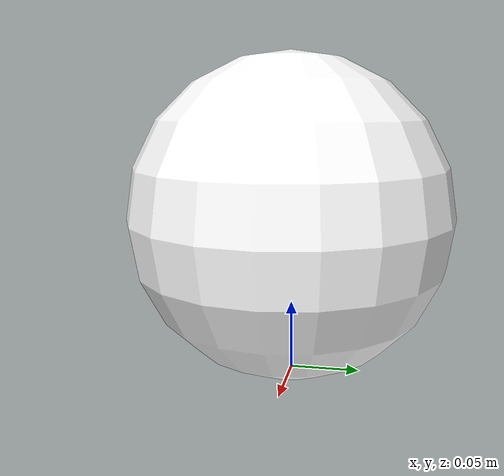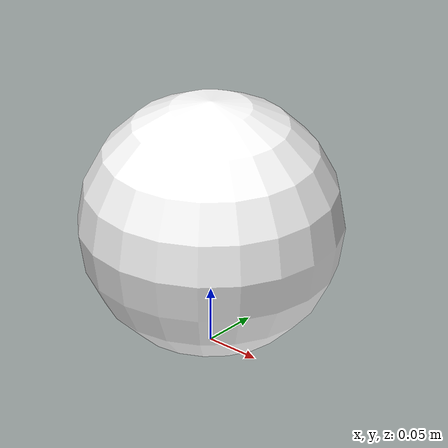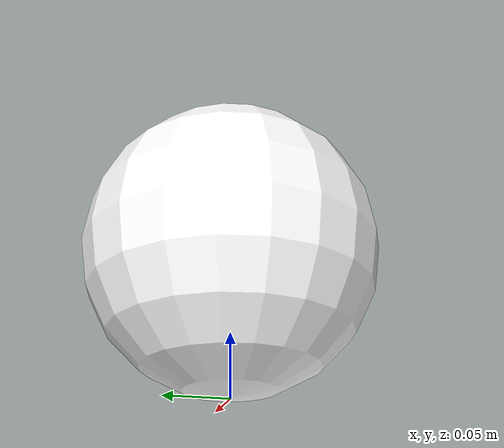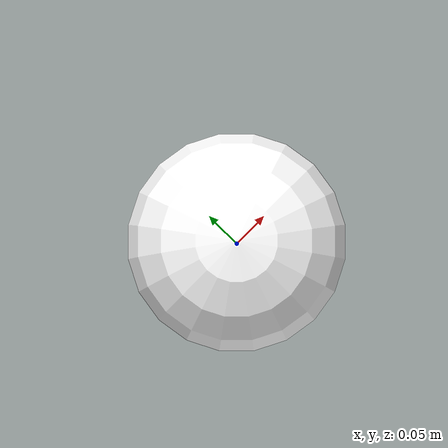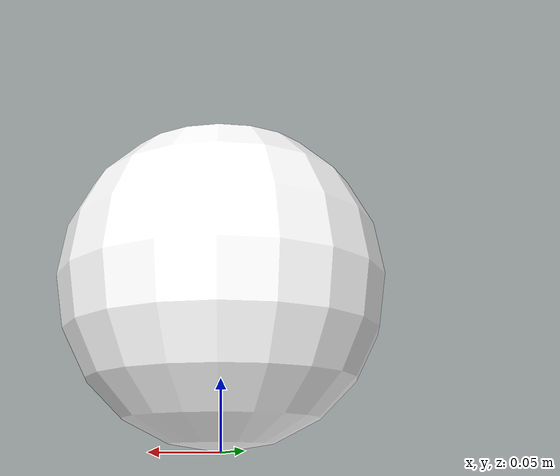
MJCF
<mujoco model="soccer_ball">
  <compiler angle="radian"/>
  <default>
    <geom friction="0.7 0.005 0.0001" solref="0.02 1" solimp="0.9 0.95 0.001"/>
  </default>
  <worldbody>
    <body name="ball" pos="0 0 0.115">
      <freejoint name="ball_free"/>
      <geom name="ball_geom" type="sphere" size="0.115" mass="0.43"
            rgba="1 1 1 1" friction="0.8 0.05 0.01" priority="1"/>
    </body>
  </worldbody>
</mujoco>
